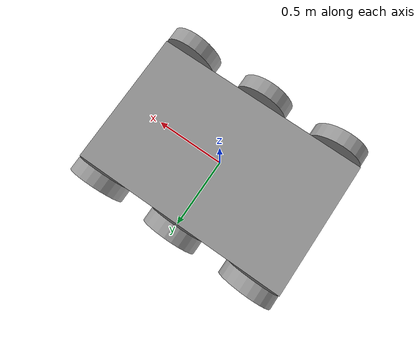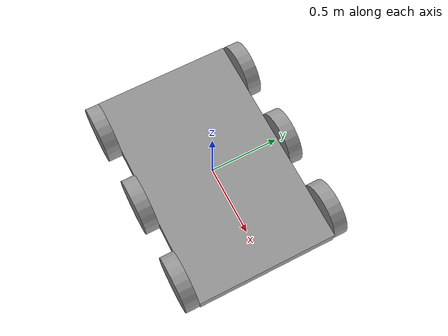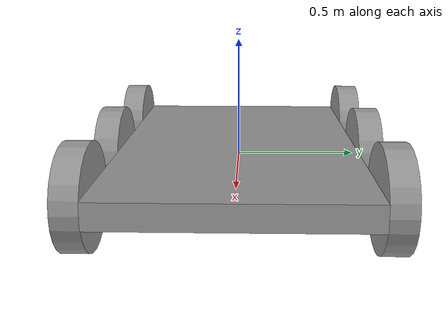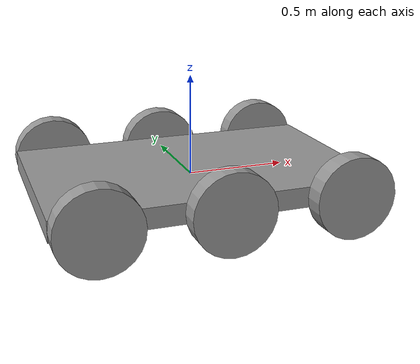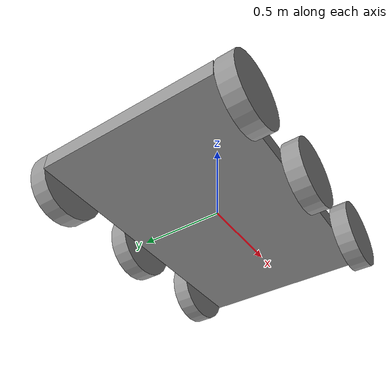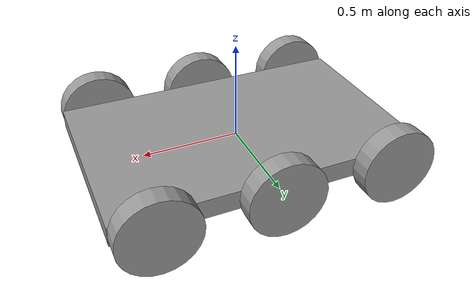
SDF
<?xml version='1.0'?>
<sdf version='1.6'>
  <model name='P1Model'>
    <link name='link_5'>
      <pose frame=''>0 0 -8e-06 0 -0 0</pose>
      <inertial>
        <mass>1</mass>
        <inertia>
          <ixx>0.166667</ixx>
          <ixy>0</ixy>
          <ixz>0</ixz>
          <iyy>0.166667</iyy>
          <iyz>0</iyz>
          <izz>0.166667</izz>
        </inertia>
        <pose frame=''>0 0 0 0 -0 0</pose>
      </inertial>
      <gravity>1</gravity>
      <self_collide>0</self_collide>
      <kinematic>0</kinematic>
      <visual name='visual'>
        <pose frame=''>0 0 0 0 -0 0</pose>
        <geometry>
          <box>
            <size>1.6 1 0.1</size>
          </box>
        </geometry>
        <material>
          <lighting>1</lighting>
          <script>
            <uri>file://media/materials/scripts/gazebo.material</uri>
            <name>Gazebo/Grey</name>
          </script>
          <shader type='pixel'>
            <normal_map>__default__</normal_map>
          </shader>
          <ambient>0.3 0.3 0.3 1</ambient>
          <diffuse>0.7 0.7 0.7 1</diffuse>
          <specular>0.01 0.01 0.01 1</specular>
          <emissive>0 0 0 1</emissive>
        </material>
        <transparency>0</transparency>
        <cast_shadows>1</cast_shadows>
      </visual>
      <collision name='collision'>
        <laser_retro>0</laser_retro>
        <max_contacts>10</max_contacts>
        <pose frame=''>0 0 0 0 -0 0</pose>
        <geometry>
          <box>
            <size>1.6 1 0.1</size>
          </box>
        </geometry>
        <surface>
          <friction>
            <ode>
              <mu>1</mu>
              <mu2>1</mu2>
              <fdir1>0 0 0</fdir1>
              <slip1>0</slip1>
              <slip2>0</slip2>
            </ode>
            <torsional>
              <coefficient>1</coefficient>
              <patch_radius>0</patch_radius>
              <surface_radius>0</surface_radius>
              <use_patch_radius>1</use_patch_radius>
              <ode>
                <slip>0</slip>
              </ode>
            </torsional>
          </friction>
          <bounce>
            <restitution_coefficient>0</restitution_coefficient>
            <threshold>1e+06</threshold>
          </bounce>
          <contact>
            <collide_without_contact>0</collide_without_contact>
            <collide_without_contact_bitmask>1</collide_without_contact_bitmask>
            <collide_bitmask>1</collide_bitmask>
            <ode>
              <soft_cfm>0</soft_cfm>
              <soft_erp>0.2</soft_erp>
              <kp>1e+13</kp>
              <kd>1</kd>
              <max_vel>0.01</max_vel>
              <min_depth>0</min_depth>
            </ode>
            <bullet>
              <split_impulse>1</split_impulse>
              <split_impulse_penetration_threshold>-0.01</split_impulse_penetration_threshold>
              <soft_cfm>0</soft_cfm>
              <soft_erp>0.2</soft_erp>
              <kp>1e+13</kp>
              <kd>1</kd>
            </bullet>
          </contact>
        </surface>
      </collision>
    </link>
    <link name='link_6'>
      <pose frame=''>0 -0.550019 -8e-06 1.5707 -0 0</pose>
      <inertial>
        <mass>1</mass>
        <inertia>
          <ixx>0.145833</ixx>
          <ixy>0</ixy>
          <ixz>0</ixz>
          <iyy>0.145833</iyy>
          <iyz>0</iyz>
          <izz>0.125</izz>
        </inertia>
        <pose frame=''>0 0 0 0 -0 0</pose>
      </inertial>
      <gravity>1</gravity>
      <self_collide>0</self_collide>
      <kinematic>0</kinematic>
      <visual name='visual'>
        <pose frame=''>0 0 0 0 -0 0</pose>
        <geometry>
          <cylinder>
            <radius>0.2</radius>
            <length>0.1</length>
          </cylinder>
        </geometry>
        <material>
          <lighting>1</lighting>
          <script>
            <uri>file://media/materials/scripts/gazebo.material</uri>
            <name>Gazebo/Grey</name>
          </script>
          <shader type='pixel'>
            <normal_map>__default__</normal_map>
          </shader>
          <ambient>0.3 0.3 0.3 1</ambient>
          <diffuse>0.7 0.7 0.7 1</diffuse>
          <specular>0.01 0.01 0.01 1</specular>
          <emissive>0 0 0 1</emissive>
        </material>
        <transparency>0</transparency>
        <cast_shadows>1</cast_shadows>
      </visual>
      <collision name='collision'>
        <laser_retro>0</laser_retro>
        <max_contacts>10</max_contacts>
        <pose frame=''>0 0 0 0 -0 0</pose>
        <geometry>
          <cylinder>
            <radius>0.2</radius>
            <length>0.1</length>
          </cylinder>
        </geometry>
        <surface>
          <friction>
            <ode>
              <mu>1</mu>
              <mu2>1</mu2>
              <fdir1>0 0 0</fdir1>
              <slip1>0</slip1>
              <slip2>0</slip2>
            </ode>
            <torsional>
              <coefficient>1</coefficient>
              <patch_radius>0</patch_radius>
              <surface_radius>0</surface_radius>
              <use_patch_radius>1</use_patch_radius>
              <ode>
                <slip>0</slip>
              </ode>
            </torsional>
          </friction>
          <bounce>
            <restitution_coefficient>0</restitution_coefficient>
            <threshold>1e+06</threshold>
          </bounce>
          <contact>
            <collide_without_contact>0</collide_without_contact>
            <collide_without_contact_bitmask>1</collide_without_contact_bitmask>
            <collide_bitmask>1</collide_bitmask>
            <ode>
              <soft_cfm>0</soft_cfm>
              <soft_erp>0.2</soft_erp>
              <kp>1e+13</kp>
              <kd>1</kd>
              <max_vel>0.01</max_vel>
              <min_depth>0</min_depth>
            </ode>
            <bullet>
              <split_impulse>1</split_impulse>
              <split_impulse_penetration_threshold>-0.01</split_impulse_penetration_threshold>
              <soft_cfm>0</soft_cfm>
              <soft_erp>0.2</soft_erp>
              <kp>1e+13</kp>
              <kd>1</kd>
            </bullet>
          </contact>
        </surface>
      </collision>
    </link>
    <link name='link_6_clone'>
      <pose frame=''>0 0.550019 -8e-06 1.5707 -0 0</pose>
      <inertial>
        <mass>1</mass>
        <inertia>
          <ixx>0.145833</ixx>
          <ixy>0</ixy>
          <ixz>0</ixz>
          <iyy>0.145833</iyy>
          <iyz>0</iyz>
          <izz>0.125</izz>
        </inertia>
        <pose frame=''>0 0 0 0 -0 0</pose>
      </inertial>
      <self_collide>0</self_collide>
      <kinematic>0</kinematic>
      <gravity>1</gravity>
      <visual name='visual'>
        <pose frame=''>0 0 0 0 -0 0</pose>
        <geometry>
          <cylinder>
            <radius>0.2</radius>
            <length>0.1</length>
          </cylinder>
        </geometry>
        <material>
          <lighting>1</lighting>
          <script>
            <uri>file://media/materials/scripts/gazebo.material</uri>
            <name>Gazebo/Grey</name>
          </script>
          <shader type='pixel'>
            <normal_map>__default__</normal_map>
          </shader>
          <ambient>0.3 0.3 0.3 1</ambient>
          <diffuse>0.7 0.7 0.7 1</diffuse>
          <specular>0.01 0.01 0.01 1</specular>
          <emissive>0 0 0 1</emissive>
        </material>
        <transparency>0</transparency>
        <cast_shadows>1</cast_shadows>
      </visual>
      <collision name='collision'>
        <laser_retro>0</laser_retro>
        <max_contacts>10</max_contacts>
        <pose frame=''>0 0 0 0 -0 0</pose>
        <geometry>
          <cylinder>
            <radius>0.2</radius>
            <length>0.1</length>
          </cylinder>
        </geometry>
        <surface>
          <friction>
            <ode>
              <mu>1</mu>
              <mu2>1</mu2>
              <fdir1>0 0 0</fdir1>
              <slip1>0</slip1>
              <slip2>0</slip2>
            </ode>
            <torsional>
              <coefficient>1</coefficient>
              <patch_radius>0</patch_radius>
              <surface_radius>0</surface_radius>
              <use_patch_radius>1</use_patch_radius>
              <ode>
                <slip>0</slip>
              </ode>
            </torsional>
          </friction>
          <bounce>
            <restitution_coefficient>0</restitution_coefficient>
            <threshold>1e+06</threshold>
          </bounce>
          <contact>
            <collide_without_contact>0</collide_without_contact>
            <collide_without_contact_bitmask>1</collide_without_contact_bitmask>
            <collide_bitmask>1</collide_bitmask>
            <ode>
              <soft_cfm>0</soft_cfm>
              <soft_erp>0.2</soft_erp>
              <kp>1e+13</kp>
              <kd>1</kd>
              <max_vel>0.01</max_vel>
              <min_depth>0</min_depth>
            </ode>
            <bullet>
              <split_impulse>1</split_impulse>
              <split_impulse_penetration_threshold>-0.01</split_impulse_penetration_threshold>
              <soft_cfm>0</soft_cfm>
              <soft_erp>0.2</soft_erp>
              <kp>1e+13</kp>
              <kd>1</kd>
            </bullet>
          </contact>
        </surface>
      </collision>
    </link>
    <link name='link_6_clone_clone'>
      <pose frame=''>-0.6 -0.550019 -8e-06 1.5707 -0 0</pose>
      <inertial>
        <mass>1</mass>
        <inertia>
          <ixx>0.145833</ixx>
          <ixy>0</ixy>
          <ixz>0</ixz>
          <iyy>0.145833</iyy>
          <iyz>0</iyz>
          <izz>0.125</izz>
        </inertia>
        <pose frame=''>0 0 0 0 -0 0</pose>
      </inertial>
      <self_collide>0</self_collide>
      <kinematic>0</kinematic>
      <gravity>1</gravity>
      <visual name='visual'>
        <pose frame=''>0 0 0 0 -0 0</pose>
        <geometry>
          <cylinder>
            <radius>0.2</radius>
            <length>0.1</length>
          </cylinder>
        </geometry>
        <material>
          <lighting>1</lighting>
          <script>
            <uri>file://media/materials/scripts/gazebo.material</uri>
            <name>Gazebo/Grey</name>
          </script>
          <shader type='pixel'>
            <normal_map>__default__</normal_map>
          </shader>
          <ambient>0.3 0.3 0.3 1</ambient>
          <diffuse>0.7 0.7 0.7 1</diffuse>
          <specular>0.01 0.01 0.01 1</specular>
          <emissive>0 0 0 1</emissive>
        </material>
        <transparency>0</transparency>
        <cast_shadows>1</cast_shadows>
      </visual>
      <collision name='collision'>
        <laser_retro>0</laser_retro>
        <max_contacts>10</max_contacts>
        <pose frame=''>0 0 0 0 -0 0</pose>
        <geometry>
          <cylinder>
            <radius>0.2</radius>
            <length>0.1</length>
          </cylinder>
        </geometry>
        <surface>
          <friction>
            <ode>
              <mu>1</mu>
              <mu2>1</mu2>
              <fdir1>0 0 0</fdir1>
              <slip1>0</slip1>
              <slip2>0</slip2>
            </ode>
            <torsional>
              <coefficient>1</coefficient>
              <patch_radius>0</patch_radius>
              <surface_radius>0</surface_radius>
              <use_patch_radius>1</use_patch_radius>
              <ode>
                <slip>0</slip>
              </ode>
            </torsional>
          </friction>
          <bounce>
            <restitution_coefficient>0</restitution_coefficient>
            <threshold>1e+06</threshold>
          </bounce>
          <contact>
            <collide_without_contact>0</collide_without_contact>
            <collide_without_contact_bitmask>1</collide_without_contact_bitmask>
            <collide_bitmask>1</collide_bitmask>
            <ode>
              <soft_cfm>0</soft_cfm>
              <soft_erp>0.2</soft_erp>
              <kp>1e+13</kp>
              <kd>1</kd>
              <max_vel>0.01</max_vel>
              <min_depth>0</min_depth>
            </ode>
            <bullet>
              <split_impulse>1</split_impulse>
              <split_impulse_penetration_threshold>-0.01</split_impulse_penetration_threshold>
              <soft_cfm>0</soft_cfm>
              <soft_erp>0.2</soft_erp>
              <kp>1e+13</kp>
              <kd>1</kd>
            </bullet>
          </contact>
        </surface>
      </collision>
    </link>
    <link name='link_6_clone_clone_0'>
      <pose frame=''>0.6 0.550019 -8e-06 1.5707 -0 0</pose>
      <inertial>
        <mass>1</mass>
        <inertia>
          <ixx>0.145833</ixx>
          <ixy>0</ixy>
          <ixz>0</ixz>
          <iyy>0.145833</iyy>
          <iyz>0</iyz>
          <izz>0.125</izz>
        </inertia>
        <pose frame=''>0 0 0 0 -0 0</pose>
      </inertial>
      <self_collide>0</self_collide>
      <kinematic>0</kinematic>
      <visual name='visual'>
        <pose frame=''>0 0 0 0 -0 0</pose>
        <geometry>
          <cylinder>
            <radius>0.2</radius>
            <length>0.1</length>
          </cylinder>
        </geometry>
        <material>
          <lighting>1</lighting>
          <script>
            <uri>file://media/materials/scripts/gazebo.material</uri>
            <name>Gazebo/Grey</name>
          </script>
          <shader type='pixel'>
            <normal_map>__default__</normal_map>
          </shader>
          <ambient>0.3 0.3 0.3 1</ambient>
          <diffuse>0.7 0.7 0.7 1</diffuse>
          <specular>0.01 0.01 0.01 1</specular>
          <emissive>0 0 0 1</emissive>
        </material>
        <transparency>0</transparency>
        <cast_shadows>1</cast_shadows>
      </visual>
      <collision name='collision'>
        <laser_retro>0</laser_retro>
        <max_contacts>10</max_contacts>
        <pose frame=''>0 0 0 0 -0 0</pose>
        <geometry>
          <cylinder>
            <radius>0.2</radius>
            <length>0.1</length>
          </cylinder>
        </geometry>
        <surface>
          <friction>
            <ode>
              <mu>1</mu>
              <mu2>1</mu2>
              <fdir1>0 0 0</fdir1>
              <slip1>0</slip1>
              <slip2>0</slip2>
            </ode>
            <torsional>
              <coefficient>1</coefficient>
              <patch_radius>0</patch_radius>
              <surface_radius>0</surface_radius>
              <use_patch_radius>1</use_patch_radius>
              <ode>
                <slip>0</slip>
              </ode>
            </torsional>
          </friction>
          <bounce>
            <restitution_coefficient>0</restitution_coefficient>
            <threshold>1e+06</threshold>
          </bounce>
          <contact>
            <collide_without_contact>0</collide_without_contact>
            <collide_without_contact_bitmask>1</collide_without_contact_bitmask>
            <collide_bitmask>1</collide_bitmask>
            <ode>
              <soft_cfm>0</soft_cfm>
              <soft_erp>0.2</soft_erp>
              <kp>1e+13</kp>
              <kd>1</kd>
              <max_vel>0.01</max_vel>
              <min_depth>0</min_depth>
            </ode>
            <bullet>
              <split_impulse>1</split_impulse>
              <split_impulse_penetration_threshold>-0.01</split_impulse_penetration_threshold>
              <soft_cfm>0</soft_cfm>
              <soft_erp>0.2</soft_erp>
              <kp>1e+13</kp>
              <kd>1</kd>
            </bullet>
          </contact>
        </surface>
      </collision>
    </link>
    <link name='link_6_clone_clone_1'>
      <pose frame=''>-0.6 0.550019 4.8e-05 1.5707 -0 0</pose>
      <inertial>
        <mass>1</mass>
        <inertia>
          <ixx>0.145833</ixx>
          <ixy>0</ixy>
          <ixz>0</ixz>
          <iyy>0.145833</iyy>
          <iyz>0</iyz>
          <izz>0.125</izz>
        </inertia>
        <pose frame=''>0 0 0 0 -0 0</pose>
      </inertial>
      <self_collide>0</self_collide>
      <kinematic>0</kinematic>
      <visual name='visual'>
        <pose frame=''>0 0 0 0 -0 0</pose>
        <geometry>
          <cylinder>
            <radius>0.2</radius>
            <length>0.1</length>
          </cylinder>
        </geometry>
        <material>
          <lighting>1</lighting>
          <script>
            <uri>file://media/materials/scripts/gazebo.material</uri>
            <name>Gazebo/Grey</name>
          </script>
          <shader type='pixel'>
            <normal_map>__default__</normal_map>
          </shader>
          <ambient>0.3 0.3 0.3 1</ambient>
          <diffuse>0.7 0.7 0.7 1</diffuse>
          <specular>0.01 0.01 0.01 1</specular>
          <emissive>0 0 0 1</emissive>
        </material>
        <transparency>0</transparency>
        <cast_shadows>1</cast_shadows>
      </visual>
      <collision name='collision'>
        <laser_retro>0</laser_retro>
        <max_contacts>10</max_contacts>
        <pose frame=''>0 0 0 0 -0 0</pose>
        <geometry>
          <cylinder>
            <radius>0.2</radius>
            <length>0.1</length>
          </cylinder>
        </geometry>
        <surface>
          <friction>
            <ode>
              <mu>1</mu>
              <mu2>1</mu2>
              <fdir1>0 0 0</fdir1>
              <slip1>0</slip1>
              <slip2>0</slip2>
            </ode>
            <torsional>
              <coefficient>1</coefficient>
              <patch_radius>0</patch_radius>
              <surface_radius>0</surface_radius>
              <use_patch_radius>1</use_patch_radius>
              <ode>
                <slip>0</slip>
              </ode>
            </torsional>
          </friction>
          <bounce>
            <restitution_coefficient>0</restitution_coefficient>
            <threshold>1e+06</threshold>
          </bounce>
          <contact>
            <collide_without_contact>0</collide_without_contact>
            <collide_without_contact_bitmask>1</collide_without_contact_bitmask>
            <collide_bitmask>1</collide_bitmask>
            <ode>
              <soft_cfm>0</soft_cfm>
              <soft_erp>0.2</soft_erp>
              <kp>1e+13</kp>
              <kd>1</kd>
              <max_vel>0.01</max_vel>
              <min_depth>0</min_depth>
            </ode>
            <bullet>
              <split_impulse>1</split_impulse>
              <split_impulse_penetration_threshold>-0.01</split_impulse_penetration_threshold>
              <soft_cfm>0</soft_cfm>
              <soft_erp>0.2</soft_erp>
              <kp>1e+13</kp>
              <kd>1</kd>
            </bullet>
          </contact>
        </surface>
      </collision>
    </link>
    <link name='link_6_clone_clone_1_clone'>
      <pose frame=''>0.6 -0.550019 -8e-06 1.5707 -0 0</pose>
      <inertial>
        <mass>1</mass>
        <inertia>
          <ixx>0.145833</ixx>
          <ixy>0</ixy>
          <ixz>0</ixz>
          <iyy>0.145833</iyy>
          <iyz>0</iyz>
          <izz>0.125</izz>
        </inertia>
        <pose frame=''>0 0 0 0 -0 0</pose>
      </inertial>
      <self_collide>0</self_collide>
      <kinematic>0</kinematic>
      <visual name='visual'>
        <pose frame=''>0 0 0 0 -0 0</pose>
        <geometry>
          <cylinder>
            <radius>0.2</radius>
            <length>0.1</length>
          </cylinder>
        </geometry>
        <material>
          <lighting>1</lighting>
          <script>
            <uri>file://media/materials/scripts/gazebo.material</uri>
            <name>Gazebo/Grey</name>
          </script>
          <shader type='pixel'>
            <normal_map>__default__</normal_map>
          </shader>
          <ambient>0.3 0.3 0.3 1</ambient>
          <diffuse>0.7 0.7 0.7 1</diffuse>
          <specular>0.01 0.01 0.01 1</specular>
          <emissive>0 0 0 1</emissive>
        </material>
        <transparency>0</transparency>
        <cast_shadows>1</cast_shadows>
      </visual>
      <collision name='collision'>
        <laser_retro>0</laser_retro>
        <max_contacts>10</max_contacts>
        <pose frame=''>0 0 0 0 -0 0</pose>
        <geometry>
          <cylinder>
            <radius>0.2</radius>
            <length>0.1</length>
          </cylinder>
        </geometry>
        <surface>
          <friction>
            <ode>
              <mu>1</mu>
              <mu2>1</mu2>
              <fdir1>0 0 0</fdir1>
              <slip1>0</slip1>
              <slip2>0</slip2>
            </ode>
            <torsional>
              <coefficient>1</coefficient>
              <patch_radius>0</patch_radius>
              <surface_radius>0</surface_radius>
              <use_patch_radius>1</use_patch_radius>
              <ode>
                <slip>0</slip>
              </ode>
            </torsional>
          </friction>
          <bounce>
            <restitution_coefficient>0</restitution_coefficient>
            <threshold>1e+06</threshold>
          </bounce>
          <contact>
            <collide_without_contact>0</collide_without_contact>
            <collide_without_contact_bitmask>1</collide_without_contact_bitmask>
            <collide_bitmask>1</collide_bitmask>
            <ode>
              <soft_cfm>0</soft_cfm>
              <soft_erp>0.2</soft_erp>
              <kp>1e+13</kp>
              <kd>1</kd>
              <max_vel>0.01</max_vel>
              <min_depth>0</min_depth>
            </ode>
            <bullet>
              <split_impulse>1</split_impulse>
              <split_impulse_penetration_threshold>-0.01</split_impulse_penetration_threshold>
              <soft_cfm>0</soft_cfm>
              <soft_erp>0.2</soft_erp>
              <kp>1e+13</kp>
              <kd>1</kd>
            </bullet>
          </contact>
        </surface>
      </collision>
    </link>
    <joint name='link_5_JOINT_10' type='revolute'>
      <parent>link_5</parent>
      <child>link_6_clone_clone_1_clone</child>
      <pose frame=''>0 0 0 0 -0 0</pose>
      <axis>
        <xyz>1 0 0</xyz>
        <use_parent_model_frame>0</use_parent_model_frame>
        <limit>
          <lower>-1.79769e+308</lower>
          <upper>1.79769e+308</upper>
          <effort>-1</effort>
          <velocity>-1</velocity>
        </limit>
        <dynamics>
          <spring_reference>0</spring_reference>
          <spring_stiffness>0</spring_stiffness>
          <damping>0</damping>
        </dynamics>
      </axis>
      <physics>
        <ode>
          <limit>
            <cfm>0</cfm>
            <erp>0.2</erp>
          </limit>
          <suspension>
            <cfm>0</cfm>
            <erp>0.2</erp>
          </suspension>
        </ode>
      </physics>
    </joint>
    <joint name='link_5_JOINT_4' type='revolute'>
      <parent>link_5</parent>
      <child>link_6</child>
      <pose frame=''>0 0 0 0 -0.02 0</pose>
      <axis>
        <xyz>0 0 1</xyz>
        <use_parent_model_frame>0</use_parent_model_frame>
        <limit>
          <lower>-1.79769e+308</lower>
          <upper>1.79769e+308</upper>
          <effort>-1</effort>
          <velocity>-1</velocity>
        </limit>
        <dynamics>
          <spring_reference>0</spring_reference>
          <spring_stiffness>0</spring_stiffness>
          <damping>0</damping>
        </dynamics>
      </axis>
      <physics>
        <ode>
          <limit>
            <cfm>0</cfm>
            <erp>0.2</erp>
          </limit>
          <suspension>
            <cfm>0</cfm>
            <erp>0.2</erp>
          </suspension>
        </ode>
      </physics>
    </joint>
    <joint name='link_5_JOINT_5' type='revolute'>
      <parent>link_5</parent>
      <child>link_6_clone</child>
      <pose frame=''>0 0 0 0 -0 0</pose>
      <axis>
        <xyz>0 0 1</xyz>
        <use_parent_model_frame>0</use_parent_model_frame>
        <limit>
          <lower>-1.79769e+308</lower>
          <upper>1.79769e+308</upper>
          <effort>-1</effort>
          <velocity>-1</velocity>
        </limit>
        <dynamics>
          <spring_reference>0</spring_reference>
          <spring_stiffness>0</spring_stiffness>
          <damping>0</damping>
        </dynamics>
      </axis>
      <physics>
        <ode>
          <limit>
            <cfm>0</cfm>
            <erp>0.2</erp>
          </limit>
          <suspension>
            <cfm>0</cfm>
            <erp>0.2</erp>
          </suspension>
        </ode>
      </physics>
    </joint>
    <joint name='link_5_JOINT_6' type='revolute'>
      <parent>link_5</parent>
      <child>link_6_clone_clone</child>
      <pose frame=''>0 0 0 0 -0 0</pose>
      <axis>
        <xyz>0 0 1</xyz>
        <use_parent_model_frame>0</use_parent_model_frame>
        <limit>
          <lower>-1.79769e+308</lower>
          <upper>1.79769e+308</upper>
          <effort>-1</effort>
          <velocity>-1</velocity>
        </limit>
        <dynamics>
          <spring_reference>0</spring_reference>
          <spring_stiffness>0</spring_stiffness>
          <damping>0</damping>
        </dynamics>
      </axis>
      <physics>
        <ode>
          <limit>
            <cfm>0</cfm>
            <erp>0.2</erp>
          </limit>
          <suspension>
            <cfm>0</cfm>
            <erp>0.2</erp>
          </suspension>
        </ode>
      </physics>
    </joint>
    <joint name='link_5_JOINT_8' type='revolute'>
      <parent>link_5</parent>
      <child>link_6_clone_clone_0</child>
      <pose frame=''>0 0 0 0 -0 0</pose>
      <axis>
        <xyz>0 0 1</xyz>
        <use_parent_model_frame>0</use_parent_model_frame>
        <limit>
          <lower>-1.79769e+308</lower>
          <upper>1.79769e+308</upper>
          <effort>-1</effort>
          <velocity>-1</velocity>
        </limit>
        <dynamics>
          <spring_reference>0</spring_reference>
          <spring_stiffness>0</spring_stiffness>
          <damping>0</damping>
        </dynamics>
      </axis>
      <physics>
        <ode>
          <limit>
            <cfm>0</cfm>
            <erp>0.2</erp>
          </limit>
          <suspension>
            <cfm>0</cfm>
            <erp>0.2</erp>
          </suspension>
        </ode>
      </physics>
    </joint>
    <joint name='link_5_JOINT_9' type='revolute'>
      <parent>link_5</parent>
      <child>link_6_clone_clone_1</child>
      <pose frame=''>0 0 0 0 -0 0</pose>
      <axis>
        <xyz>1 0 0</xyz>
        <use_parent_model_frame>0</use_parent_model_frame>
        <limit>
          <lower>-1.79769e+308</lower>
          <upper>1.79769e+308</upper>
          <effort>-1</effort>
          <velocity>-1</velocity>
        </limit>
        <dynamics>
          <spring_reference>0</spring_reference>
          <spring_stiffness>0</spring_stiffness>
          <damping>0</damping>
        </dynamics>
      </axis>
      <physics>
        <ode>
          <limit>
            <cfm>0</cfm>
            <erp>0.2</erp>
          </limit>
          <suspension>
            <cfm>0</cfm>
            <erp>0.2</erp>
          </suspension>
        </ode>
      </physics>
    </joint>
    <static>0</static>
    <allow_auto_disable>1</allow_auto_disable>
  </model>
</sdf>
